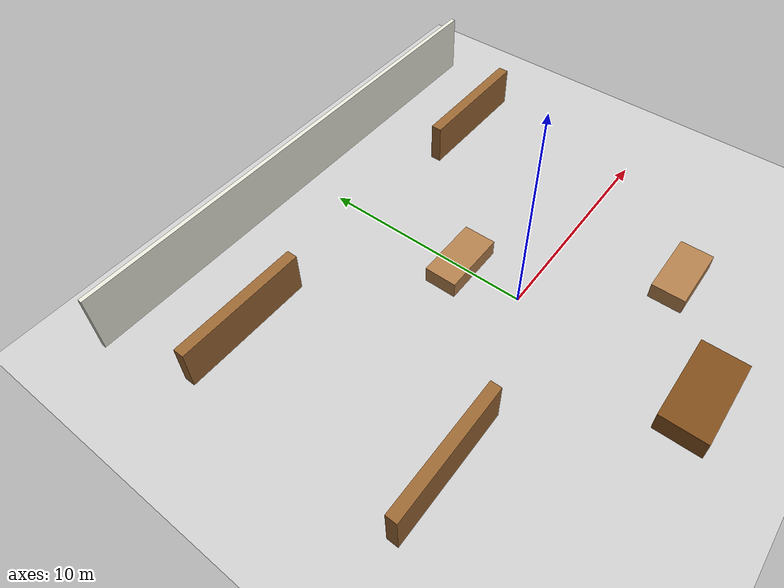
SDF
<?xml version="1.0" ?>
<sdf version="1.6">
  <world name="library">
    <include>
      <uri>model://sun</uri>
    </include>
    <include>
      <uri>model://ground_plane</uri>
    </include>

    <!-- Library walls -->
    <model name="wall_north">
      <static>true</static>
      <pose>0 12 1.5 0 0 0</pose>
      <link name="link">
        <collision name="collision">
          <geometry>
            <box>
              <size>24 0.2 3</size>
            </box>
          </geometry>
        </collision>
        <visual name="visual">
          <geometry>
            <box>
              <size>24 0.2 3</size>
            </box>
          </geometry>
          <material>
            <ambient>0.9 0.9 0.85 1</ambient>
          </material>
        </visual>
      </link>
    </model>

    <!-- Bookshelves -->
    <model name="bookshelf1">
      <static>true</static>
      <pose>-8 8 1 0 0 0</pose>
      <link name="link">
        <collision name="collision">
          <geometry>
            <box>
              <size>6 0.5 2</size>
            </box>
          </geometry>
        </collision>
        <visual name="visual">
          <geometry>
            <box>
              <size>6 0.5 2</size>
            </box>
          </geometry>
          <material>
            <ambient>0.6 0.4 0.2 1</ambient>
          </material>
        </visual>
      </link>
    </model>

    <model name="bookshelf2">
      <static>true</static>
      <pose>8 8 1 0 0 0</pose>
      <link name="link">
        <collision name="collision">
          <geometry>
            <box>
              <size>6 0.5 2</size>
            </box>
          </geometry>
        </collision>
        <visual name="visual">
          <geometry>
            <box>
              <size>6 0.5 2</size>
            </box>
          </geometry>
          <material>
            <ambient>0.6 0.4 0.2 1</ambient>
          </material>
        </visual>
      </link>
    </model>

    <model name="bookshelf3">
      <static>true</static>
      <pose>-8 -2 1 0 0 0</pose>
      <link name="link">
        <collision name="collision">
          <geometry>
            <box>
              <size>6 0.5 2</size>
            </box>
          </geometry>
        </collision>
        <visual name="visual">
          <geometry>
            <box>
              <size>6 0.5 2</size>
            </box>
          </geometry>
          <material>
            <ambient>0.6 0.4 0.2 1</ambient>
          </material>
        </visual>
      </link>
    </model>

    <!-- Reading tables -->
    <model name="table1">
      <static>true</static>
      <pose>0 3 0.4 0 0 0</pose>
      <link name="link">
        <collision name="collision">
          <geometry>
            <box>
              <size>3 1.5 0.8</size>
            </box>
          </geometry>
        </collision>
        <visual name="visual">
          <geometry>
            <box>
              <size>3 1.5 0.8</size>
            </box>
          </geometry>
          <material>
            <ambient>0.7 0.5 0.3 1</ambient>
          </material>
        </visual>
      </link>
    </model>

    <model name="table2">
      <static>true</static>
      <pose>5 -5 0.4 0 0 0</pose>
      <link name="link">
        <collision name="collision">
          <geometry>
            <box>
              <size>3 1.5 0.8</size>
            </box>
          </geometry>
        </collision>
        <visual name="visual">
          <geometry>
            <box>
              <size>3 1.5 0.8</size>
            </box>
          </geometry>
          <material>
            <ambient>0.7 0.5 0.3 1</ambient>
          </material>
        </visual>
      </link>
    </model>

    <!-- Information desk -->
    <model name="info_desk">
      <static>true</static>
      <pose>0 -8 0.5 0 0 0</pose>
      <link name="link">
        <collision name="collision">
          <geometry>
            <box>
              <size>4 2 1</size>
            </box>
          </geometry>
        </collision>
        <visual name="visual">
          <geometry>
            <box>
              <size>4 2 1</size>
            </box>
          </geometry>
          <material>
            <ambient>0.5 0.3 0.1 1</ambient>
          </material>
        </visual>
      </link>
    </model>

  </world>
</sdf>
